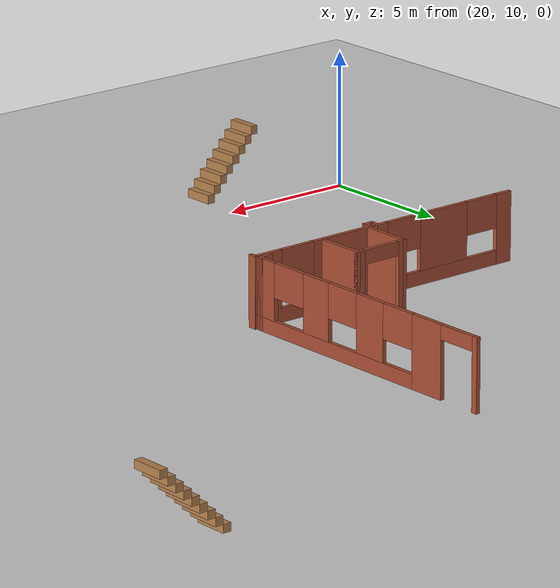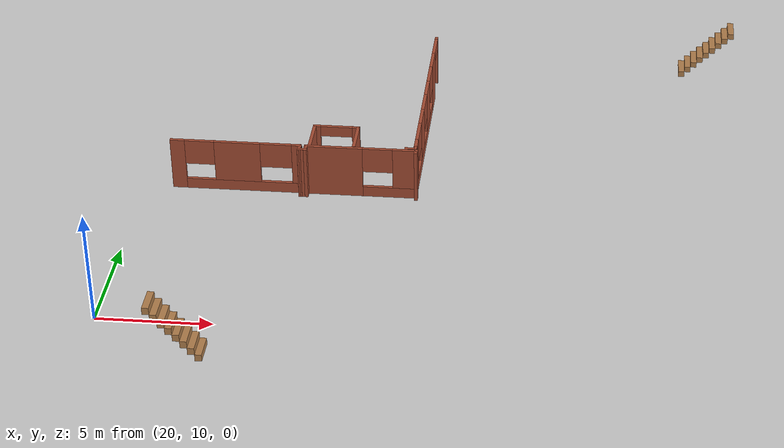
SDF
<sdf version="1.6">
 <world name="default">
  <model name="ground_plane">
   <static>1</static>
   <link name="link">
    <collision name="collision">
     <geometry><plane><normal>0 0 1</normal><size>100 100</size></plane></geometry>
     <surface><friction><ode><mu>100</mu><mu2>50</mu2></ode></friction></surface>
    </collision>
    <visual name="visual">
     <cast_shadows>0</cast_shadows>
     <geometry><plane><normal>0 0 1</normal><size>100 100</size></plane></geometry>
     <material>
      <script><uri>file://media/materials/scripts/gazebo.material</uri><name>Gazebo/Grey</name></script>
     </material>
    </visual>
   </link>
  </model>
  <model name="CVSSP">
   <pose>23.8714 24.094 0 0 -0 0</pose>
   <link name="Stairs_2">
    <visual name="Stairs_2_Visual_0">
     <pose>20.6299 9.1142 0.138889 0 -0 1.5708</pose>
     <geometry><box><size>1.1749 0.286667 0.277778</size></box></geometry>
     <material>
      <script><uri>file://media/materials/scripts/gazebo.material</uri><name>Gazebo/Wood</name></script>
      <ambient>1 1 1 1</ambient>
     </material>
    </visual>
    <collision name="Stairs_2_Collision_0">
     <geometry><box><size>1.1749 0.286667 0.277778</size></box></geometry>
     <pose>20.6299 9.1142 0.138889 0 -0 1.5708</pose>
    </collision>
    <visual name="Stairs_2_Visual_1">
     <pose>20.9166 9.1142 0.416667 0 -0 1.5708</pose>
     <geometry><box><size>1.1749 0.286667 0.277778</size></box></geometry>
     <material>
      <script><uri>file://media/materials/scripts/gazebo.material</uri><name>Gazebo/Wood</name></script>
      <ambient>1 1 1 1</ambient>
     </material>
    </visual>
    <collision name="Stairs_2_Collision_1">
     <geometry><box><size>1.1749 0.286667 0.277778</size></box></geometry>
     <pose>20.9166 9.1142 0.416667 0 -0 1.5708</pose>
    </collision>
    <visual name="Stairs_2_Visual_2">
     <pose>21.2033 9.1142 0.694444 0 -0 1.5708</pose>
     <geometry><box><size>1.1749 0.286667 0.277778</size></box></geometry>
     <material>
      <script><uri>file://media/materials/scripts/gazebo.material</uri><name>Gazebo/Wood</name></script>
      <ambient>1 1 1 1</ambient>
     </material>
    </visual>
    <collision name="Stairs_2_Collision_2">
     <geometry><box><size>1.1749 0.286667 0.277778</size></box></geometry>
     <pose>21.2033 9.1142 0.694444 0 -0 1.5708</pose>
    </collision>
    <visual name="Stairs_2_Visual_3">
     <pose>21.4899 9.1142 0.972222 0 -0 1.5708</pose>
     <geometry><box><size>1.1749 0.286667 0.277778</size></box></geometry>
     <material>
      <script><uri>file://media/materials/scripts/gazebo.material</uri><name>Gazebo/Wood</name></script>
      <ambient>1 1 1 1</ambient>
     </material>
    </visual>
    <collision name="Stairs_2_Collision_3">
     <geometry><box><size>1.1749 0.286667 0.277778</size></box></geometry>
     <pose>21.4899 9.1142 0.972222 0 -0 1.5708</pose>
    </collision>
    <visual name="Stairs_2_Visual_4">
     <pose>21.7766 9.1142 1.25 0 -0 1.5708</pose>
     <geometry><box><size>1.1749 0.286667 0.277778</size></box></geometry>
     <material>
      <script><uri>file://media/materials/scripts/gazebo.material</uri><name>Gazebo/Wood</name></script>
      <ambient>1 1 1 1</ambient>
     </material>
    </visual>
    <collision name="Stairs_2_Collision_4">
     <geometry><box><size>1.1749 0.286667 0.277778</size></box></geometry>
     <pose>21.7766 9.1142 1.25 0 -0 1.5708</pose>
    </collision>
    <visual name="Stairs_2_Visual_5">
     <pose>22.0633 9.1142 1.52778 0 -0 1.5708</pose>
     <geometry><box><size>1.1749 0.286667 0.277778</size></box></geometry>
     <material>
      <script><uri>file://media/materials/scripts/gazebo.material</uri><name>Gazebo/Wood</name></script>
      <ambient>1 1 1 1</ambient>
     </material>
    </visual>
    <collision name="Stairs_2_Collision_5">
     <geometry><box><size>1.1749 0.286667 0.277778</size></box></geometry>
     <pose>22.0633 9.1142 1.52778 0 -0 1.5708</pose>
    </collision>
    <visual name="Stairs_2_Visual_6">
     <pose>22.3499 9.1142 1.80556 0 -0 1.5708</pose>
     <geometry><box><size>1.1749 0.286667 0.277778</size></box></geometry>
     <material>
      <script><uri>file://media/materials/scripts/gazebo.material</uri><name>Gazebo/Wood</name></script>
      <ambient>1 1 1 1</ambient>
     </material>
    </visual>
    <collision name="Stairs_2_Collision_6">
     <geometry><box><size>1.1749 0.286667 0.277778</size></box></geometry>
     <pose>22.3499 9.1142 1.80556 0 -0 1.5708</pose>
    </collision>
    <visual name="Stairs_2_Visual_7">
     <pose>22.6366 9.1142 2.08333 0 -0 1.5708</pose>
     <geometry><box><size>1.1749 0.286667 0.277778</size></box></geometry>
     <material>
      <script><uri>file://media/materials/scripts/gazebo.material</uri><name>Gazebo/Wood</name></script>
      <ambient>1 1 1 1</ambient>
     </material>
    </visual>
    <collision name="Stairs_2_Collision_7">
     <geometry><box><size>1.1749 0.286667 0.277778</size></box></geometry>
     <pose>22.6366 9.1142 2.08333 0 -0 1.5708</pose>
    </collision>
    <visual name="Stairs_2_Visual_8">
     <pose>22.9233 9.1142 2.36111 0 -0 1.5708</pose>
     <geometry><box><size>1.1749 0.286667 0.277778</size></box></geometry>
     <material>
      <script><uri>file://media/materials/scripts/gazebo.material</uri><name>Gazebo/Wood</name></script>
      <ambient>1 1 1 1</ambient>
     </material>
    </visual>
    <collision name="Stairs_2_Collision_8">
     <geometry><box><size>1.1749 0.286667 0.277778</size></box></geometry>
     <pose>22.9233 9.1142 2.36111 0 -0 1.5708</pose>
    </collision>
   </link>
   <link name="Stairs_6">
    <visual name="Stairs_6_Visual_0">
     <pose>0.989254 -16.0013 0.15625 0 -0 -1.5708</pose>
     <geometry><box><size>1.145 0.28375 0.3125</size></box></geometry>
     <material>
      <script><uri>file://media/materials/scripts/gazebo.material</uri><name>Gazebo/Wood</name></script>
      <ambient>1 1 1 1</ambient>
     </material>
    </visual>
    <collision name="Stairs_6_Collision_0">
     <geometry><box><size>1.145 0.28375 0.3125</size></box></geometry>
     <pose>0.989254 -16.0013 0.15625 0 -0 -1.5708</pose>
    </collision>
    <visual name="Stairs_6_Visual_1">
     <pose>0.705504 -16.0013 0.46875 0 -0 -1.5708</pose>
     <geometry><box><size>1.145 0.28375 0.3125</size></box></geometry>
     <material>
      <script><uri>file://media/materials/scripts/gazebo.material</uri><name>Gazebo/Wood</name></script>
      <ambient>1 1 1 1</ambient>
     </material>
    </visual>
    <collision name="Stairs_6_Collision_1">
     <geometry><box><size>1.145 0.28375 0.3125</size></box></geometry>
     <pose>0.705504 -16.0013 0.46875 0 -0 -1.5708</pose>
    </collision>
    <visual name="Stairs_6_Visual_2">
     <pose>0.421754 -16.0013 0.78125 0 -0 -1.5708</pose>
     <geometry><box><size>1.145 0.28375 0.3125</size></box></geometry>
     <material>
      <script><uri>file://media/materials/scripts/gazebo.material</uri><name>Gazebo/Wood</name></script>
      <ambient>1 1 1 1</ambient>
     </material>
    </visual>
    <collision name="Stairs_6_Collision_2">
     <geometry><box><size>1.145 0.28375 0.3125</size></box></geometry>
     <pose>0.421754 -16.0013 0.78125 0 -0 -1.5708</pose>
    </collision>
    <visual name="Stairs_6_Visual_3">
     <pose>0.138004 -16.0013 1.09375 0 -0 -1.5708</pose>
     <geometry><box><size>1.145 0.28375 0.3125</size></box></geometry>
     <material>
      <script><uri>file://media/materials/scripts/gazebo.material</uri><name>Gazebo/Wood</name></script>
      <ambient>1 1 1 1</ambient>
     </material>
    </visual>
    <collision name="Stairs_6_Collision_3">
     <geometry><box><size>1.145 0.28375 0.3125</size></box></geometry>
     <pose>0.138004 -16.0013 1.09375 0 -0 -1.5708</pose>
    </collision>
    <visual name="Stairs_6_Visual_4">
     <pose>-0.145746 -16.0013 1.40625 0 -0 -1.5708</pose>
     <geometry><box><size>1.145 0.28375 0.3125</size></box></geometry>
     <material>
      <script><uri>file://media/materials/scripts/gazebo.material</uri><name>Gazebo/Wood</name></script>
      <ambient>1 1 1 1</ambient>
     </material>
    </visual>
    <collision name="Stairs_6_Collision_4">
     <geometry><box><size>1.145 0.28375 0.3125</size></box></geometry>
     <pose>-0.145746 -16.0013 1.40625 0 -0 -1.5708</pose>
    </collision>
    <visual name="Stairs_6_Visual_5">
     <pose>-0.429496 -16.0013 1.71875 0 -0 -1.5708</pose>
     <geometry><box><size>1.145 0.28375 0.3125</size></box></geometry>
     <material>
      <script><uri>file://media/materials/scripts/gazebo.material</uri><name>Gazebo/Wood</name></script>
      <ambient>1 1 1 1</ambient>
     </material>
    </visual>
    <collision name="Stairs_6_Collision_5">
     <geometry><box><size>1.145 0.28375 0.3125</size></box></geometry>
     <pose>-0.429496 -16.0013 1.71875 0 -0 -1.5708</pose>
    </collision>
    <visual name="Stairs_6_Visual_6">
     <pose>-0.713246 -16.0013 2.03125 0 -0 -1.5708</pose>
     <geometry><box><size>1.145 0.28375 0.3125</size></box></geometry>
     <material>
      <script><uri>file://media/materials/scripts/gazebo.material</uri><name>Gazebo/Wood</name></script>
      <ambient>1 1 1 1</ambient>
     </material>
    </visual>
    <collision name="Stairs_6_Collision_6">
     <geometry><box><size>1.145 0.28375 0.3125</size></box></geometry>
     <pose>-0.713246 -16.0013 2.03125 0 -0 -1.5708</pose>
    </collision>
    <visual name="Stairs_6_Visual_7">
     <pose>-0.996996 -16.0013 2.34375 0 -0 -1.5708</pose>
     <geometry><box><size>1.145 0.28375 0.3125</size></box></geometry>
     <material>
      <script><uri>file://media/materials/scripts/gazebo.material</uri><name>Gazebo/Wood</name></script>
      <ambient>1 1 1 1</ambient>
     </material>
    </visual>
    <collision name="Stairs_6_Collision_7">
     <geometry><box><size>1.145 0.28375 0.3125</size></box></geometry>
     <pose>-0.996996 -16.0013 2.34375 0 -0 -1.5708</pose>
    </collision>
   </link>
   <link name="Wall_120">
    <collision name="Wall_120_Collision">
     <geometry><box><size>0.331632 0.15 2.5</size></box></geometry>
     <pose>0 0 1.25 0 -0 0</pose>
    </collision>
    <visual name="Wall_120_Visual">
     <pose>0 0 1.25 0 -0 0</pose>
     <geometry><box><size>0.331632 0.15 2.5</size></box></geometry>
     <material>
      <script><uri>file://media/materials/scripts/gazebo.material</uri><name>Gazebo/Bricks</name></script>
      <ambient>1 1 1 1</ambient>
     </material>
    </visual>
    <pose>8.51042 -3.86996 0 0 -0 1.5708</pose>
   </link>
   <link name="Wall_465">
    <collision name="Wall_465_Collision">
     <geometry><box><size>0.529047 0.15 2.5</size></box></geometry>
     <pose>0 0 1.25 0 -0 0</pose>
    </collision>
    <visual name="Wall_465_Visual">
     <pose>0 0 1.25 0 -0 0</pose>
     <geometry><box><size>0.529047 0.15 2.5</size></box></geometry>
     <material>
      <script><uri>file://media/materials/scripts/gazebo.material</uri><name>Gazebo/Bricks</name></script>
      <ambient>1 1 1 1</ambient>
     </material>
    </visual>
    <pose>8.25042 -3.5996 0 0 -0 0.010433</pose>
   </link>
   <link name="Wall_466">
    <collision name="Wall_466_Collision">
     <geometry><box><size>0.28943 0.15 2.5</size></box></geometry>
     <pose>0 0 1.25 0 -0 0</pose>
    </collision>
    <visual name="Wall_466_Visual">
     <pose>0 0 1.25 0 -0 0</pose>
     <geometry><box><size>0.28943 0.15 2.5</size></box></geometry>
     <material>
      <script><uri>file://media/materials/scripts/gazebo.material</uri><name>Gazebo/Bricks</name></script>
      <ambient>1 1 1 1</ambient>
     </material>
    </visual>
    <pose>8.4463 -3.5282 0 0 -0 1.47944</pose>
   </link>
   <link name="Wall_468">
    <collision name="Wall_468_Collision">
     <geometry><box><size>1.81156 0.15 2.5</size></box></geometry>
     <pose>0 0 1.25 0 -0 0</pose>
    </collision>
    <visual name="Wall_468_Visual">
     <pose>0 0 1.25 0 -0 0</pose>
     <geometry><box><size>1.81156 0.15 2.5</size></box></geometry>
     <material>
      <script><uri>file://media/materials/scripts/gazebo.material</uri><name>Gazebo/Bricks</name></script>
      <ambient>1 1 1 1</ambient>
     </material>
    </visual>
    <pose>3.68791 -2.82478 0 0 -0 1.5708</pose>
   </link>
   <link name="Wall_469">
    <pose>4.68485 -1.99401 0 0 -0 0</pose>
    <visual name="Wall_469_Visual_0">
     <pose>-0.899938 0 1.25 0 -0 0</pose>
     <geometry><box><size>0.343992 0.15 2.5</size></box></geometry>
     <material>
      <script><uri>file://media/materials/scripts/gazebo.material</uri><name>Gazebo/Bricks</name></script>
      <ambient>1 1 1 1</ambient>
     </material>
    </visual>
    <collision name="Wall_469_Collision_0">
     <geometry><box><size>0.343992 0.15 2.5</size></box></geometry>
     <pose>-0.899938 0 1.25 0 -0 0</pose>
    </collision>
    <visual name="Wall_469_Visual_1">
     <pose>0.897049 0 1.25 0 -0 0</pose>
     <geometry><box><size>0.349769 0.15 2.5</size></box></geometry>
     <material>
      <script><uri>file://media/materials/scripts/gazebo.material</uri><name>Gazebo/Bricks</name></script>
      <ambient>1 1 1 1</ambient>
     </material>
    </visual>
    <collision name="Wall_469_Collision_1">
     <geometry><box><size>0.349769 0.15 2.5</size></box></geometry>
     <pose>0.897049 0 1.25 0 -0 0</pose>
    </collision>
    <visual name="Wall_469_Visual_2">
     <pose>-0.002889 0 2.25 0 -0 0</pose>
     <geometry><box><size>1.45011 0.15 0.5</size></box></geometry>
     <material>
      <script><uri>file://media/materials/scripts/gazebo.material</uri><name>Gazebo/Bricks</name></script>
      <ambient>1 1 1 1</ambient>
     </material>
    </visual>
    <collision name="Wall_469_Collision_2">
     <geometry><box><size>1.45011 0.15 0.5</size></box></geometry>
     <pose>-0.002889 0 2.25 0 -0 0</pose>
    </collision>
   </link>
   <link name="Wall_470">
    <collision name="Wall_470_Collision">
     <geometry><box><size>1.75 0.15 2.5</size></box></geometry>
     <pose>0 0 1.25 0 -0 0</pose>
    </collision>
    <visual name="Wall_470_Visual">
     <pose>0 0 1.25 0 -0 0</pose>
     <geometry><box><size>1.75 0.15 2.5</size></box></geometry>
     <material>
      <script><uri>file://media/materials/scripts/gazebo.material</uri><name>Gazebo/Bricks</name></script>
      <ambient>1 1 1 1</ambient>
     </material>
    </visual>
    <pose>5.68178 -2.79401 0 0 0 -1.5708</pose>
   </link>
   <link name="Wall_809">
    <pose>0.343033 -3.76669 0 0 -0 0</pose>
    <visual name="Wall_809_Visual_0">
     <pose>-2.66868 0 1.25 0 -0 0</pose>
     <geometry><box><size>0.662631 0.15 2.5</size></box></geometry>
     <material>
      <script><uri>file://media/materials/scripts/gazebo.material</uri><name>Gazebo/Bricks</name></script>
      <ambient>1 1 1 1</ambient>
     </material>
    </visual>
    <collision name="Wall_809_Collision_0">
     <geometry><box><size>0.662631 0.15 2.5</size></box></geometry>
     <pose>-2.66868 0 1.25 0 -0 0</pose>
    </collision>
    <visual name="Wall_809_Visual_1">
     <pose>0.331316 0 0.25 0 -0 0</pose>
     <geometry><box><size>5.33737 0.15 0.5</size></box></geometry>
     <material>
      <script><uri>file://media/materials/scripts/gazebo.material</uri><name>Gazebo/Bricks</name></script>
      <ambient>1 1 1 1</ambient>
     </material>
    </visual>
    <collision name="Wall_809_Collision_1">
     <geometry><box><size>5.33737 0.15 0.5</size></box></geometry>
     <pose>0.331316 0 0.25 0 -0 0</pose>
    </collision>
    <visual name="Wall_809_Visual_2">
     <pose>0.0492 0 1.5 0 -0 0</pose>
     <geometry><box><size>2.09736 0.15 2</size></box></geometry>
     <material>
      <script><uri>file://media/materials/scripts/gazebo.material</uri><name>Gazebo/Bricks</name></script>
      <ambient>1 1 1 1</ambient>
     </material>
    </visual>
    <collision name="Wall_809_Collision_2">
     <geometry><box><size>2.09736 0.15 2</size></box></geometry>
     <pose>0.0492 0 1.5 0 -0 0</pose>
    </collision>
    <visual name="Wall_809_Visual_3">
     <pose>2.76811 0 1.5 0 -0 0</pose>
     <geometry><box><size>0.463782 0.15 2</size></box></geometry>
     <material>
      <script><uri>file://media/materials/scripts/gazebo.material</uri><name>Gazebo/Bricks</name></script>
      <ambient>1 1 1 1</ambient>
     </material>
    </visual>
    <collision name="Wall_809_Collision_3">
     <geometry><box><size>0.463782 0.15 2</size></box></geometry>
     <pose>2.76811 0 1.5 0 -0 0</pose>
    </collision>
    <visual name="Wall_809_Visual_4">
     <pose>-1.66843 0 1.9 0 -0 0</pose>
     <geometry><box><size>1.33789 0.15 1.2</size></box></geometry>
     <material>
      <script><uri>file://media/materials/scripts/gazebo.material</uri><name>Gazebo/Bricks</name></script>
      <ambient>1 1 1 1</ambient>
     </material>
    </visual>
    <collision name="Wall_809_Collision_4">
     <geometry><box><size>1.33789 0.15 1.2</size></box></geometry>
     <pose>-1.66843 0 1.9 0 -0 0</pose>
    </collision>
    <visual name="Wall_809_Visual_5">
     <pose>1.81705 0 1.9 0 -0 0</pose>
     <geometry><box><size>1.43833 0.15 1.2</size></box></geometry>
     <material>
      <script><uri>file://media/materials/scripts/gazebo.material</uri><name>Gazebo/Bricks</name></script>
      <ambient>1 1 1 1</ambient>
     </material>
    </visual>
    <collision name="Wall_809_Collision_5">
     <geometry><box><size>1.43833 0.15 1.2</size></box></geometry>
     <pose>1.81705 0 1.9 0 -0 0</pose>
    </collision>
   </link>
   <link name="Wall_810">
    <collision name="Wall_810_Collision">
     <geometry><box><size>0.453959 0.15 2.5</size></box></geometry>
     <pose>0 0 1.25 0 -0 0</pose>
    </collision>
    <visual name="Wall_810_Visual">
     <pose>0 0 1.25 0 -0 0</pose>
     <geometry><box><size>0.453959 0.15 2.5</size></box></geometry>
     <material>
      <script><uri>file://media/materials/scripts/gazebo.material</uri><name>Gazebo/Bricks</name></script>
      <ambient>1 1 1 1</ambient>
     </material>
    </visual>
    <pose>3.26225 -3.93012 0 0 0 -1.60885</pose>
   </link>
   <link name="Wall_811">
    <collision name="Wall_811_Collision">
     <geometry><box><size>0.429611 0.15 2.5</size></box></geometry>
     <pose>0 0 1.25 0 -0 0</pose>
    </collision>
    <visual name="Wall_811_Visual">
     <pose>0 0 1.25 0 -0 0</pose>
     <geometry><box><size>0.429611 0.15 2.5</size></box></geometry>
     <material>
      <script><uri>file://media/materials/scripts/gazebo.material</uri><name>Gazebo/Bricks</name></script>
      <ambient>1 1 1 1</ambient>
     </material>
    </visual>
    <pose>3.39627 -4.08199 0 0 -0 0</pose>
   </link>
   <link name="Wall_812">
    <collision name="Wall_812_Collision">
     <geometry><box><size>0.451586 0.15 2.5</size></box></geometry>
     <pose>0 0 1.25 0 -0 0</pose>
    </collision>
    <visual name="Wall_812_Visual">
     <pose>0 0 1.25 0 -0 0</pose>
     <geometry><box><size>0.451586 0.15 2.5</size></box></geometry>
     <material>
      <script><uri>file://media/materials/scripts/gazebo.material</uri><name>Gazebo/Bricks</name></script>
      <ambient>1 1 1 1</ambient>
     </material>
    </visual>
    <pose>3.53608 -3.93164 0 0 -0 1.5708</pose>
   </link>
   <link name="Wall_813">
    <pose>6.02262 -3.77551 0 0 -0 0.002326</pose>
    <visual name="Wall_813_Visual_0">
     <pose>-1.25053 0 1.25 0 -0 0</pose>
     <geometry><box><size>2.62204 0.15 2.5</size></box></geometry>
     <material>
      <script><uri>file://media/materials/scripts/gazebo.material</uri><name>Gazebo/Bricks</name></script>
      <ambient>1 1 1 1</ambient>
     </material>
    </visual>
    <collision name="Wall_813_Collision_0">
     <geometry><box><size>2.62204 0.15 2.5</size></box></geometry>
     <pose>-1.25053 0 1.25 0 -0 0</pose>
    </collision>
    <visual name="Wall_813_Visual_1">
     <pose>1.31102 0 0.25 0 -0 0</pose>
     <geometry><box><size>2.50105 0.15 0.5</size></box></geometry>
     <material>
      <script><uri>file://media/materials/scripts/gazebo.material</uri><name>Gazebo/Bricks</name></script>
      <ambient>1 1 1 1</ambient>
     </material>
    </visual>
    <collision name="Wall_813_Collision_1">
     <geometry><box><size>2.50105 0.15 0.5</size></box></geometry>
     <pose>1.31102 0 0.25 0 -0 0</pose>
    </collision>
    <visual name="Wall_813_Visual_2">
     <pose>1.9938 0 1.5 0 -0 0</pose>
     <geometry><box><size>1.13549 0.15 2</size></box></geometry>
     <material>
      <script><uri>file://media/materials/scripts/gazebo.material</uri><name>Gazebo/Bricks</name></script>
      <ambient>1 1 1 1</ambient>
     </material>
    </visual>
    <collision name="Wall_813_Collision_2">
     <geometry><box><size>1.13549 0.15 2</size></box></geometry>
     <pose>1.9938 0 1.5 0 -0 0</pose>
    </collision>
    <visual name="Wall_813_Visual_3">
     <pose>0.743275 0 1.9 0 -0 0</pose>
     <geometry><box><size>1.36556 0.15 1.2</size></box></geometry>
     <material>
      <script><uri>file://media/materials/scripts/gazebo.material</uri><name>Gazebo/Bricks</name></script>
      <ambient>1 1 1 1</ambient>
     </material>
    </visual>
    <collision name="Wall_813_Collision_3">
     <geometry><box><size>1.36556 0.15 1.2</size></box></geometry>
     <pose>0.743275 0 1.9 0 -0 0</pose>
    </collision>
   </link>
   <link name="Wall_89">
    <pose>8.45266 1.71622 0 0 0 -1.5708</pose>
    <visual name="Wall_89_Visual_0">
     <pose>-5.14167 0 1.25 0 -0 0</pose>
     <geometry><box><size>0.216665 0.15 2.5</size></box></geometry>
     <material>
      <script><uri>file://media/materials/scripts/gazebo.material</uri><name>Gazebo/Bricks</name></script>
      <ambient>1 1 1 1</ambient>
     </material>
    </visual>
    <collision name="Wall_89_Collision_0">
     <geometry><box><size>0.216665 0.15 2.5</size></box></geometry>
     <pose>-5.14167 0 1.25 0 -0 0</pose>
    </collision>
    <visual name="Wall_89_Visual_1">
     <pose>-2.91109 0 1.25 0 -0 0</pose>
     <geometry><box><size>1.35565 0.15 2.5</size></box></geometry>
     <material>
      <script><uri>file://media/materials/scripts/gazebo.material</uri><name>Gazebo/Bricks</name></script>
      <ambient>1 1 1 1</ambient>
     </material>
    </visual>
    <collision name="Wall_89_Collision_1">
     <geometry><box><size>1.35565 0.15 2.5</size></box></geometry>
     <pose>-2.91109 0 1.25 0 -0 0</pose>
    </collision>
    <visual name="Wall_89_Visual_2">
     <pose>1.50837 0 0.25 0 -0 0</pose>
     <geometry><box><size>7.48326 0.15 0.5</size></box></geometry>
     <material>
      <script><uri>file://media/materials/scripts/gazebo.material</uri><name>Gazebo/Bricks</name></script>
      <ambient>1 1 1 1</ambient>
     </material>
    </visual>
    <collision name="Wall_89_Collision_2">
     <geometry><box><size>7.48326 0.15 0.5</size></box></geometry>
     <pose>1.50837 0 0.25 0 -0 0</pose>
    </collision>
    <visual name="Wall_89_Visual_3">
     <pose>-0.207681 0 1.5 0 -0 0</pose>
     <geometry><box><size>1.28154 0.15 2</size></box></geometry>
     <material>
      <script><uri>file://media/materials/scripts/gazebo.material</uri><name>Gazebo/Bricks</name></script>
      <ambient>1 1 1 1</ambient>
     </material>
    </visual>
    <collision name="Wall_89_Collision_3">
     <geometry><box><size>1.28154 0.15 2</size></box></geometry>
     <pose>-0.207681 0 1.5 0 -0 0</pose>
    </collision>
    <visual name="Wall_89_Visual_4">
     <pose>2.43389 0 1.5 0 -0 0</pose>
     <geometry><box><size>1.2518 0.15 2</size></box></geometry>
     <material>
      <script><uri>file://media/materials/scripts/gazebo.material</uri><name>Gazebo/Bricks</name></script>
      <ambient>1 1 1 1</ambient>
     </material>
    </visual>
    <collision name="Wall_89_Collision_4">
     <geometry><box><size>1.2518 0.15 2</size></box></geometry>
     <pose>2.43389 0 1.5 0 -0 0</pose>
    </collision>
    <visual name="Wall_89_Visual_5">
     <pose>4.882 0 1.5 0 -0 0</pose>
     <geometry><box><size>0.736008 0.15 2</size></box></geometry>
     <material>
      <script><uri>file://media/materials/scripts/gazebo.material</uri><name>Gazebo/Bricks</name></script>
      <ambient>1 1 1 1</ambient>
     </material>
    </visual>
    <collision name="Wall_89_Collision_5">
     <geometry><box><size>0.736008 0.15 2</size></box></geometry>
     <pose>4.882 0 1.5 0 -0 0</pose>
    </collision>
    <visual name="Wall_89_Visual_6">
     <pose>-1.54086 0 1.9 0 -0 0</pose>
     <geometry><box><size>1.38481 0.15 1.2</size></box></geometry>
     <material>
      <script><uri>file://media/materials/scripts/gazebo.material</uri><name>Gazebo/Bricks</name></script>
      <ambient>1 1 1 1</ambient>
     </material>
    </visual>
    <collision name="Wall_89_Collision_6">
     <geometry><box><size>1.38481 0.15 1.2</size></box></geometry>
     <pose>-1.54086 0 1.9 0 -0 0</pose>
    </collision>
    <visual name="Wall_89_Visual_7">
     <pose>1.12054 0 1.9 0 -0 0</pose>
     <geometry><box><size>1.3749 0.15 1.2</size></box></geometry>
     <material>
      <script><uri>file://media/materials/scripts/gazebo.material</uri><name>Gazebo/Bricks</name></script>
      <ambient>1 1 1 1</ambient>
     </material>
    </visual>
    <collision name="Wall_89_Collision_7">
     <geometry><box><size>1.3749 0.15 1.2</size></box></geometry>
     <pose>1.12054 0 1.9 0 -0 0</pose>
    </collision>
    <visual name="Wall_89_Visual_8">
     <pose>3.78689 0 1.9 0 -0 0</pose>
     <geometry><box><size>1.4542 0.15 1.2</size></box></geometry>
     <material>
      <script><uri>file://media/materials/scripts/gazebo.material</uri><name>Gazebo/Bricks</name></script>
      <ambient>1 1 1 1</ambient>
     </material>
    </visual>
    <collision name="Wall_89_Collision_8">
     <geometry><box><size>1.4542 0.15 1.2</size></box></geometry>
     <pose>3.78689 0 1.9 0 -0 0</pose>
    </collision>
    <visual name="Wall_89_Visual_9">
     <pose>-4.31112 0 2.25 0 -0 0</pose>
     <geometry><box><size>1.44442 0.15 0.5</size></box></geometry>
     <material>
      <script><uri>file://media/materials/scripts/gazebo.material</uri><name>Gazebo/Bricks</name></script>
      <ambient>1 1 1 1</ambient>
     </material>
    </visual>
    <collision name="Wall_89_Collision_9">
     <geometry><box><size>1.44442 0.15 0.5</size></box></geometry>
     <pose>-4.31112 0 2.25 0 -0 0</pose>
    </collision>
   </link>
   <static>1</static>
  </model>
 </world>
</sdf>
